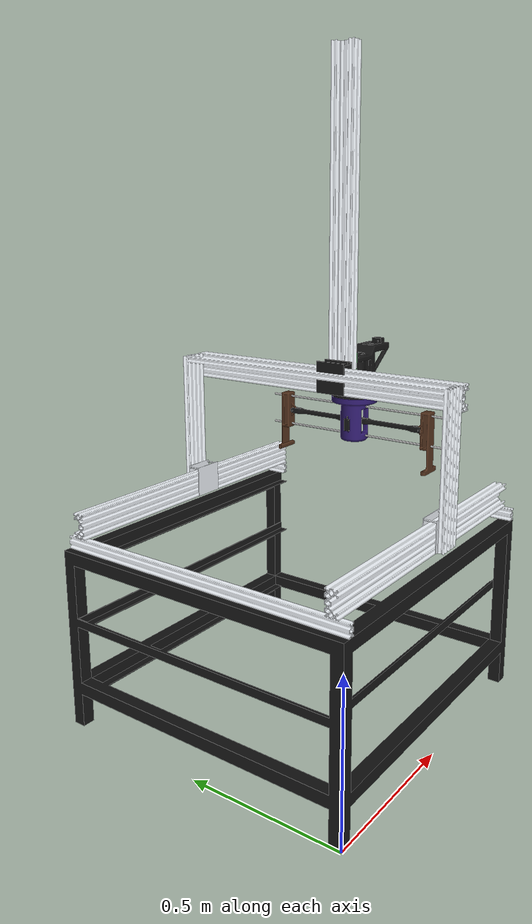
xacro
<?xml version="1.0" ?>
<robot name="robot_v2" xmlns:xacro="http://www.ros.org/wiki/xacro">

<xacro:arg name="include_ros_extensions" default="true"/>
<xacro:arg name="mesh_directory" default="package://robot_v2_description/meshes"/>
<xacro:property name="mesh_directory" value="$(arg mesh_directory)"/>

<xacro:include filename="materials.xacro" />
<xacro:if value="$(arg include_ros_extensions)">
  <xacro:include filename="robot_v2.trans" />
  <xacro:include filename="robot_v2.gazebo" />
</xacro:if>
<link name="base_link">
  <inertial>
    <origin xyz="0.4465187338943092 0.5011775495578319 0.3193003997969371" rpy="0 0 0"/>
    <mass value="35.20021994999972"/>
    <inertia ixx="7.415486" iyy="6.657505" izz="11.052925" ixy="-0.003976" iyz="-0.000645" ixz="0.518037"/>
  </inertial>
  <visual>
    <origin xyz="0 0 0" rpy="0 0 0"/>
    <geometry>
      <mesh filename="${mesh_directory}/base_link.stl" scale="0.001 0.001 0.001"/>
    </geometry>
    <material name="gris_muy_oscuro"/>
  </visual>
  <collision>
    <origin xyz="0 0 0" rpy="0 0 0"/>
    <geometry>
      <mesh filename="${mesh_directory}/base_link.stl" scale="0.001 0.001 0.001"/>
    </geometry>
  </collision>
</link>

<link name="base_x_1">
  <inertial>
    <origin xyz="-0.5729136589173718 0.5000000000000003 0.06988546062662004" rpy="0 0 0"/>
    <mass value="5.223502606934044"/>
    <inertia ixx="0.96339" iyy="0.578667" izz="1.530371" ixy="0.0" iyz="0.0" ixz="-0.016412"/>
  </inertial>
  <visual>
    <origin xyz="-1.04 -0.0 -0.58" rpy="0 0 0"/>
    <geometry>
      <mesh filename="${mesh_directory}/base_x_1.stl" scale="0.001 0.001 0.001"/>
    </geometry>
    <material name="plateado_metalico_brillante"/>
  </visual>
  <collision>
    <origin xyz="-1.04 -0.0 -0.58" rpy="0 0 0"/>
    <geometry>
      <mesh filename="${mesh_directory}/base_x_1.stl" scale="0.001 0.001 0.001"/>
    </geometry>
  </collision>
</link>

<link name="x_link_1">
  <inertial>
    <origin xyz="0.07555855369126685 0.4303889916943571 0.3502453737179022" rpy="0 0 0"/>
    <mass value="4.217725934641851"/>
    <inertia ixx="0.681784" iyy="0.0999" izz="0.593813" ixy="-3.2e-05" iyz="0.000114" ixz="-0.00924"/>
  </inertial>
  <visual>
    <origin xyz="-0.529995 -0.07 -0.6215" rpy="0 0 0"/>
    <geometry>
      <mesh filename="${mesh_directory}/x_link_1.stl" scale="0.001 0.001 0.001"/>
    </geometry>
    <material name="plateado_metalico_brillante"/>
  </visual>
  <collision>
    <origin xyz="-0.529995 -0.07 -0.6215" rpy="0 0 0"/>
    <geometry>
      <mesh filename="${mesh_directory}/x_link_1.stl" scale="0.001 0.001 0.001"/>
    </geometry>
  </collision>
</link>

<link name="y_link_1">
  <inertial>
    <origin xyz="-0.019999999999997686 -0.05069622199334184 0.050000000000004485" rpy="0 0 0"/>
    <mass value="0.7973307511653405"/>
    <inertia ixx="0.001358" iyy="0.00108" izz="0.001079" ixy="-0.0" iyz="0.0" ixz="0.0"/>
  </inertial>
  <visual>
    <origin xyz="-0.659995 -0.50041 -1.023" rpy="0 0 0"/>
    <geometry>
      <mesh filename="${mesh_directory}/y_link_1.stl" scale="0.001 0.001 0.001"/>
    </geometry>
    <material name="negro_azabache_mate"/>
  </visual>
  <collision>
    <origin xyz="-0.659995 -0.50041 -1.023" rpy="0 0 0"/>
    <geometry>
      <mesh filename="${mesh_directory}/y_link_1.stl" scale="0.001 0.001 0.001"/>
    </geometry>
  </collision>
</link>

<link name="z_link_1">
  <inertial>
    <origin xyz="0.022649381038547967 0.03848712470817417 0.5175000000000003" rpy="0 0 0"/>
    <mass value="2.203345266241909"/>
    <inertia ixx="0.198241" iyy="0.197014" izz="0.001875" ixy="0.0" iyz="0.0" ixz="0.0"/>
  </inertial>
  <visual>
    <origin xyz="-0.664995 -0.40041 -1.023" rpy="0 0 0"/>
    <geometry>
      <mesh filename="${mesh_directory}/z_link_1.stl" scale="0.001 0.001 0.001"/>
    </geometry>
    <material name="plateado_metalico_brillante"/>
  </visual>
  <collision>
    <origin xyz="-0.664995 -0.40041 -1.023" rpy="0 0 0"/>
    <geometry>
      <mesh filename="${mesh_directory}/z_link_1.stl" scale="0.001 0.001 0.001"/>
    </geometry>
  </collision>
</link>

<link name="complemento_cabezal_1">
  <inertial>
    <origin xyz="0.003000000000002223 -2.9404609624972267e-07 0.06250000000000067" rpy="0 0 0"/>
    <mass value="0.060885189763587116"/>
    <inertia ixx="0.000106" iyy="7.8e-05" izz="2.8e-05" ixy="0.0" iyz="-0.0" ixz="0.0"/>
  </inertial>
  <visual>
    <origin xyz="-0.704995 -0.43891 -1.023" rpy="0 0 0"/>
    <geometry>
      <mesh filename="${mesh_directory}/complemento_cabezal_1.stl" scale="0.001 0.001 0.001"/>
    </geometry>
    <material name="verde"/>
  </visual>
  <collision>
    <origin xyz="-0.704995 -0.43891 -1.023" rpy="0 0 0"/>
    <geometry>
      <mesh filename="${mesh_directory}/complemento_cabezal_1.stl" scale="0.001 0.001 0.001"/>
    </geometry>
  </collision>
</link>

<link name="robot_cabezal_1">
  <inertial>
    <origin xyz="0.07470375860725609 1.1761516747865741e-05 0.07435169471155967" rpy="0 0 0"/>
    <mass value="0.735233698589477"/>
    <inertia ixx="0.001161" iyy="0.002962" izz="0.002526" ixy="-0.0" iyz="-0.0" ixz="-0.000677"/>
  </inertial>
  <visual>
    <origin xyz="-0.710995 -0.43891 -1.023" rpy="0 0 0"/>
    <geometry>
      <mesh filename="${mesh_directory}/robot_cabezal_1.stl" scale="0.001 0.001 0.001"/>
    </geometry>
    <material name="negro_azabache_mate"/>
  </visual>
  <collision>
    <origin xyz="-0.710995 -0.43891 -1.023" rpy="0 0 0"/>
    <geometry>
      <mesh filename="${mesh_directory}/robot_cabezal_1.stl" scale="0.001 0.001 0.001"/>
    </geometry>
  </collision>
</link>

<link name="acople_cabezal_1">
  <inertial>
    <origin xyz="3.885780586188048e-15 -2.940460988032356e-07 -0.03529715770244257" rpy="0 0 0"/>
    <mass value="0.43485593621650237"/>
    <inertia ixx="0.000618" iyy="0.000617" izz="0.001131" ixy="-0.0" iyz="0.0" ixz="0.0"/>
  </inertial>
  <visual>
    <origin xyz="-0.760995 -0.43891 -1.0455" rpy="0 0 0"/>
    <geometry>
      <mesh filename="${mesh_directory}/acople_cabezal_1.stl" scale="0.001 0.001 0.001"/>
    </geometry>
    <material name="negro_azabache_mate"/>
  </visual>
  <collision>
    <origin xyz="-0.760995 -0.43891 -1.0455" rpy="0 0 0"/>
    <geometry>
      <mesh filename="${mesh_directory}/acople_cabezal_1.stl" scale="0.001 0.001 0.001"/>
    </geometry>
  </collision>
</link>

<link name="cabezal_inferior_1">
  <inertial>
    <origin xyz="-0.0032788461990163054 -2.013089014296643e-05 -0.05001506846643711" rpy="0 0 0"/>
    <mass value="0.808298897205994"/>
    <inertia ixx="0.002812" iyy="0.002837" izz="0.001617" ixy="-0.0" iyz="-1e-06" ixz="-8.5e-05"/>
  </inertial>
  <visual>
    <origin xyz="-0.760995 -0.43891 -0.996" rpy="0 0 0"/>
    <geometry>
      <mesh filename="${mesh_directory}/cabezal_inferior_1.stl" scale="0.001 0.001 0.001"/>
    </geometry>
    <material name="azul_violaceo"/>
  </visual>
  <collision>
    <origin xyz="-0.760995 -0.43891 -0.996" rpy="0 0 0"/>
    <geometry>
      <mesh filename="${mesh_directory}/cabezal_inferior_1.stl" scale="0.001 0.001 0.001"/>
    </geometry>
  </collision>
</link>

<link name="servo_mg996R_1">
  <inertial>
    <origin xyz="-0.008872221063190744 0.004961019077659667 0.02474433271706722" rpy="0 0 0"/>
    <mass value="0.24706045427040543"/>
    <inertia ixx="4.3e-05" iyy="6.5e-05" izz="3.8e-05" ixy="-0.0" iyz="-0.0" ixz="-0.0"/>
  </inertial>
  <visual>
    <origin xyz="-0.740517 -0.43382 -0.8805" rpy="0 0 0"/>
    <geometry>
      <mesh filename="${mesh_directory}/servo_mg996R_1.stl" scale="0.001 0.001 0.001"/>
    </geometry>
    <material name="negro_azabache_mate"/>
  </visual>
  <collision>
    <origin xyz="-0.740517 -0.43382 -0.8805" rpy="0 0 0"/>
    <geometry>
      <mesh filename="${mesh_directory}/servo_mg996R_1.stl" scale="0.001 0.001 0.001"/>
    </geometry>
  </collision>
</link>

<link name="horn_Servo_1">
  <inertial>
    <origin xyz="0.003187489121206477 1.4413294837922752e-05 0.0" rpy="0 0 0"/>
    <mass value="0.005099610361289279"/>
    <!-- Estimacion por volumen STL y densidad uniforme; masa y origen CAD conservados. -->
    <inertia ixx="2.4043669365e-07" iyy="1.2530990893e-07" izz="1.25307578e-07" ixy="5.0476408546e-10" iyz="2.4855236723e-15" ixz="-8.5505096321e-16"/>
  </inertial>
  <visual>
    <origin xyz="-0.752495 -0.438872 -0.915" rpy="0 0 0"/>
    <geometry>
      <mesh filename="${mesh_directory}/horn_Servo_1.stl" scale="0.001 0.001 0.001"/>
    </geometry>
    <material name="negro_azabache_mate"/>
  </visual>
  <collision>
    <origin xyz="-0.752495 -0.438872 -0.915" rpy="0 0 0"/>
    <geometry>
      <mesh filename="${mesh_directory}/horn_Servo_1.stl" scale="0.001 0.001 0.001"/>
    </geometry>
  </collision>
</link>

<link name="acople_palas_1">
  <inertial>
    <origin xyz="0.0011958116261031604 5.411013637823814e-06 0.0" rpy="0 0 0"/>
    <mass value="0.07977197198617901"/>
    <inertia ixx="3e-05" iyy="5e-06" izz="2.6e-05" ixy="0.0" iyz="-0.0" ixz="-0.0"/>
  </inertial>
  <visual>
    <origin xyz="-0.756995 -0.438892 -0.915" rpy="0 0 0"/>
    <geometry>
      <mesh filename="${mesh_directory}/acople_palas_1.stl" scale="0.001 0.001 0.001"/>
    </geometry>
    <material name="negro_azabache_mate"/>
  </visual>
  <collision>
    <origin xyz="-0.756995 -0.438892 -0.915" rpy="0 0 0"/>
    <geometry>
      <mesh filename="${mesh_directory}/acople_palas_1.stl" scale="0.001 0.001 0.001"/>
    </geometry>
  </collision>
</link>

<link name="Paleta_grid_1_1">
  <inertial>
    <origin xyz="0.005368595240389684 -0.1069766958212447 2.2922720166462796e-08" rpy="0 0 0"/>
    <mass value="0.05350927460261899"/>
    <inertia ixx="0.000258" iyy="3e-06" izz="0.000259" ixy="1e-06" iyz="0.0" ixz="-0.0"/>
  </inertial>
  <visual>
    <origin xyz="-0.754105 -0.413879 -0.915" rpy="0 0 0"/>
    <geometry>
      <mesh filename="${mesh_directory}/Paleta_grid_1_1.stl" scale="0.001 0.001 0.001"/>
    </geometry>
    <material name="negro_azabache_mate"/>
  </visual>
  <collision>
    <origin xyz="-0.754105 -0.413879 -0.915" rpy="0 0 0"/>
    <geometry>
      <mesh filename="${mesh_directory}/Paleta_grid_1_1.stl" scale="0.001 0.001 0.001"/>
    </geometry>
  </collision>
</link>

<link name="Paleta_grid_2_1">
  <inertial>
    <origin xyz="0.004431445128948663 0.10701969304160469 2.2922720166462796e-08" rpy="0 0 0"/>
    <mass value="0.05350927460261899"/>
    <inertia ixx="0.000258" iyy="3e-06" izz="0.000259" ixy="1e-06" iyz="-0.0" ixz="0.0"/>
  </inertial>
  <visual>
    <origin xyz="-0.753885 -0.463879 -0.915" rpy="0 0 0"/>
    <geometry>
      <mesh filename="${mesh_directory}/Paleta_grid_2_1.stl" scale="0.001 0.001 0.001"/>
    </geometry>
    <material name="negro_azabache_mate"/>
  </visual>
  <collision>
    <origin xyz="-0.753885 -0.463879 -0.915" rpy="0 0 0"/>
    <geometry>
      <mesh filename="${mesh_directory}/Paleta_grid_2_1.stl" scale="0.001 0.001 0.001"/>
    </geometry>
  </collision>
</link>

<link name="Pala_DER_1">
  <inertial>
    <origin xyz="-0.003882699651937993 -0.026794629021388267 -0.019023121817094535" rpy="0 0 0"/>
    <mass value="0.1680843406216635"/>
    <inertia ixx="0.000488" iyy="0.000494" izz="4.1e-05" ixy="-0.0" iyz="-2.9e-05" ixz="0.0"/>
  </inertial>
  <visual>
    <origin xyz="-0.764843 -0.199924 -0.915" rpy="0 0 0"/>
    <geometry>
      <mesh filename="${mesh_directory}/Pala_DER_1.stl" scale="0.001 0.001 0.001"/>
    </geometry>
    <material name="cafe_oscuro"/>
  </visual>
  <collision>
    <origin xyz="-0.764843 -0.199924 -0.915" rpy="0 0 0"/>
    <geometry>
      <mesh filename="${mesh_directory}/Pala_DER_1.stl" scale="0.001 0.001 0.001"/>
    </geometry>
  </collision>
</link>

<link name="Pala_IZQ_1">
  <inertial>
    <origin xyz="-0.004117276449730367 0.02675951802045895 -0.01902312142512841" rpy="0 0 0"/>
    <mass value="0.16808434411260517"/>
    <inertia ixx="0.000488" iyy="0.000494" izz="4.1e-05" ixy="-0.0" iyz="2.9e-05" ixz="-0.0"/>
  </inertial>
  <visual>
    <origin xyz="-0.762747 -0.67792 -0.915" rpy="0 0 0"/>
    <geometry>
      <mesh filename="${mesh_directory}/Pala_IZQ_1.stl" scale="0.001 0.001 0.001"/>
    </geometry>
    <material name="cafe_oscuro"/>
  </visual>
  <collision>
    <origin xyz="-0.762747 -0.67792 -0.915" rpy="0 0 0"/>
    <geometry>
      <mesh filename="${mesh_directory}/Pala_IZQ_1.stl" scale="0.001 0.001 0.001"/>
    </geometry>
  </collision>
</link>

<link name="Soporte_1_1">
  <inertial>
    <origin xyz="-0.001402560565108013 0.31999688228192996 -1.1102230246251565e-16" rpy="0 0 0"/>
    <mass value="0.02663442251713428"/>
    <!-- Estimacion por volumen STL y densidad uniforme; masa y origen CAD conservados. -->
    <inertia ixx="0.00092037155027" iyy="3.1003731189e-07" izz="0.00092038912539" ixy="4.0340583526e-06" iyz="-3.1255448549e-12" ixz="2.5007250268e-14"/>
  </inertial>
  <visual>
    <origin xyz="-0.761192 -0.393873 -0.963" rpy="0 0 0"/>
    <geometry>
      <mesh filename="${mesh_directory}/Soporte_1_1.stl" scale="0.001 0.001 0.001"/>
    </geometry>
    <material name="silver"/>
  </visual>
  <collision>
    <origin xyz="-0.761192 -0.393873 -0.963" rpy="0 0 0"/>
    <geometry>
      <mesh filename="${mesh_directory}/Soporte_1_1.stl" scale="0.001 0.001 0.001"/>
    </geometry>
  </collision>
</link>

<link name="Soporte_2_1">
  <inertial>
    <origin xyz="-0.0014028765290923229 0.3199969462788138 -2.220446049250313e-16" rpy="0 0 0"/>
    <mass value="0.02663442251713428"/>
    <!-- Estimacion por volumen STL y densidad uniforme; masa y origen CAD conservados. -->
    <inertia ixx="0.00092037233368" iyy="3.1003779368e-07" izz="0.0009203899093" ixy="4.0341053871e-06" iyz="1.8476833119e-13" ixz="-1.0493772854e-14"/>
  </inertial>
  <visual>
    <origin xyz="-0.761192 -0.393945 -0.867" rpy="0 0 0"/>
    <geometry>
      <mesh filename="${mesh_directory}/Soporte_2_1.stl" scale="0.001 0.001 0.001"/>
    </geometry>
    <material name="silver"/>
  </visual>
  <collision>
    <origin xyz="-0.761192 -0.393945 -0.867" rpy="0 0 0"/>
    <geometry>
      <mesh filename="${mesh_directory}/Soporte_2_1.stl" scale="0.001 0.001 0.001"/>
    </geometry>
  </collision>
</link>

<joint name="rig_1" type="fixed">
  <origin xyz="1.0385 0.0 0.58" rpy="0 0 0"/>
  <parent link="base_link"/>
  <child link="base_x_1"/>
</joint>

<joint name="x_joint" type="prismatic">
  <origin xyz="-0.510005 0.07 0.0415" rpy="0 0 0"/>
  <parent link="base_x_1"/>
  <child link="x_link_1"/>
  <axis xyz="-1.0 0.0 0.0"/>
  <limit upper="0.45" lower="-0.35" effort="100" velocity="100"/>
</joint>

<joint name="y_joint" type="prismatic">
  <origin xyz="0.13 0.43041 0.4015" rpy="0 0 0"/>
  <parent link="x_link_1"/>
  <child link="y_link_1"/>
  <axis xyz="0.0 1.0 0.0"/>
  <limit upper="0.2" lower="-0.2" effort="100" velocity="100"/>
</joint>

<joint name="z_joint" type="prismatic">
  <origin xyz="0.005 -0.09 0.0" rpy="0 0 0"/>
  <parent link="y_link_1"/>
  <child link="z_link_1"/>
  <axis xyz="0.0 0.0 -1.0"/>
  <limit upper="0.935" lower="0.0" effort="100" velocity="100"/>
</joint>

<joint name="rig_2" type="fixed">
  <origin xyz="0.04 0.0385 0.0" rpy="0 0 0"/>
  <parent link="z_link_1"/>
  <child link="complemento_cabezal_1"/>
</joint>

<joint name="rig_3" type="fixed">
  <origin xyz="0.006 0.0 0.0" rpy="0 0 0"/>
  <parent link="complemento_cabezal_1"/>
  <child link="robot_cabezal_1"/>
</joint>

<joint name="r_joint" type="revolute">
  <origin xyz="0.05 0.0 0.0225" rpy="0 0 0"/>
  <parent link="robot_cabezal_1"/>
  <child link="acople_cabezal_1"/>
  <axis xyz="0.0 0.0 -1.0"/>
  <limit upper="1.570796" lower="-1.570796" effort="100" velocity="100"/>
</joint>

<joint name="rig_4" type="fixed">
  <origin xyz="0.0 0.0 -0.0495" rpy="0 0 0"/>
  <parent link="acople_cabezal_1"/>
  <child link="cabezal_inferior_1"/>
</joint>

<joint name="rig_5" type="fixed">
  <origin xyz="-0.020478 -0.00509 -0.1155" rpy="0 0 0"/>
  <parent link="cabezal_inferior_1"/>
  <child link="servo_mg996R_1"/>
</joint>

<joint name="rig_6" type="fixed">
  <origin xyz="0.011978 0.005052 0.0345" rpy="0 0 0"/>
  <parent link="servo_mg996R_1"/>
  <child link="horn_Servo_1"/>
</joint>

<joint name="rig_7" type="fixed">
  <origin xyz="0.0045 2e-05 0.0" rpy="0 0 0"/>
  <parent link="horn_Servo_1"/>
  <child link="acople_palas_1"/>
</joint>

<joint name="grid_der" type="prismatic">
  <origin xyz="-0.00289 -0.025013 0.0" rpy="0 0 0"/>
  <parent link="acople_palas_1"/>
  <child link="Paleta_grid_1_1"/>
  <axis xyz="0.004384 -0.99999 -0.0"/>
  <limit upper="0.04" lower="-0.04" effort="100" velocity="100"/>
  <mimic joint="grid" multiplier="-1" offset="0"/>
</joint>

<joint name="grid" type="prismatic">
  <origin xyz="-0.00311 0.024987 0.0" rpy="0 0 0"/>
  <parent link="acople_palas_1"/>
  <child link="Paleta_grid_2_1"/>
  <axis xyz="0.004384 -0.99999 -0.0"/>
  <limit upper="0.04" lower="0.0" effort="100" velocity="100"/>
</joint>

<joint name="rig_8" type="fixed">
  <origin xyz="0.010738 -0.213955 0.0" rpy="0 0 0"/>
  <parent link="Paleta_grid_1_1"/>
  <child link="Pala_DER_1"/>
</joint>

<joint name="rig_9" type="fixed">
  <origin xyz="0.008862 0.214041 0.0" rpy="0 0 0"/>
  <parent link="Paleta_grid_2_1"/>
  <child link="Pala_IZQ_1"/>
</joint>

<joint name="rig_10" type="fixed">
  <origin xyz="0.000197 -0.32 -0.033" rpy="0 0 0"/>
  <parent link="cabezal_inferior_1"/>
  <child link="Soporte_1_1"/>
</joint>

<joint name="rig_11" type="fixed">
  <origin xyz="0.000197 -0.32 -0.129" rpy="0 0 0"/>
  <parent link="cabezal_inferior_1"/>
  <child link="Soporte_2_1"/>
</joint>

</robot>

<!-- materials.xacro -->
<robot name="robot_v2" xmlns:xacro="http://www.ros.org/wiki/xacro" >

<!-- Editar los valores color_* aqui: URDF y Gazebo comparten esta paleta. -->

<xacro:property name="color_silver" value="0.700 0.700 0.700 1.000" />
<material name="silver">
  <color rgba="${color_silver}"/>
</material>

<!-- URDF define color y opacidad. El acabado mate, el brillo y la
     metalicidad se configuran en el material del simulador. -->

<!-- Negro azabache, ligeramente más luminoso. -->
<xacro:property name="color_negro_azabache_mate" value="0.080 0.080 0.080 1.000" />
<material name="negro_azabache_mate">
  <color rgba="${color_negro_azabache_mate}"/>
</material>
<!-- Gris muy oscuro, cercano al negro. -->
<xacro:property name="color_gris_muy_oscuro" value="0.080 0.080 0.080 1.000" />
<material name="gris_muy_oscuro">
  <color rgba="${color_gris_muy_oscuro}"/>
</material>

<!-- Plateado claro de tono ligeramente frio. -->
<xacro:property name="color_plateado_metalico_brillante" value="0.900 0.920 0.940 1.000" />
<material name="plateado_metalico_brillante">
  <color rgba="${color_plateado_metalico_brillante}"/>
</material>

<!-- Verde intenso. -->
<xacro:property name="color_verde" value="0.050 0.550 0.120 1.000" />
<material name="verde">
  <color rgba="${color_verde}"/>
</material>

<!-- Café chocolate -->
<xacro:property name="color_cafe_oscuro" value="0.320 0.190 0.110 1.000" />
<material name="cafe_oscuro">
  <color rgba="${color_cafe_oscuro}"/>
</material>

<!-- Azul violáceo oscuro, con tonalidad cercana al violeta. -->
<xacro:property name="color_azul_violaceo" value="0.180 0.100 0.420 1.000" />
<material name="azul_violaceo">
  <color rgba="${color_azul_violaceo}"/>
</material>
</robot>
